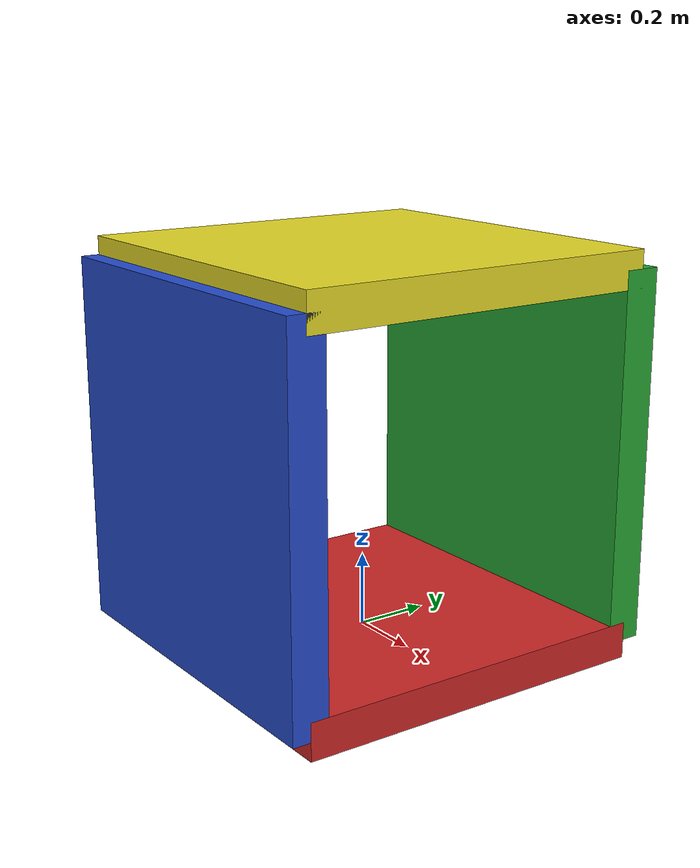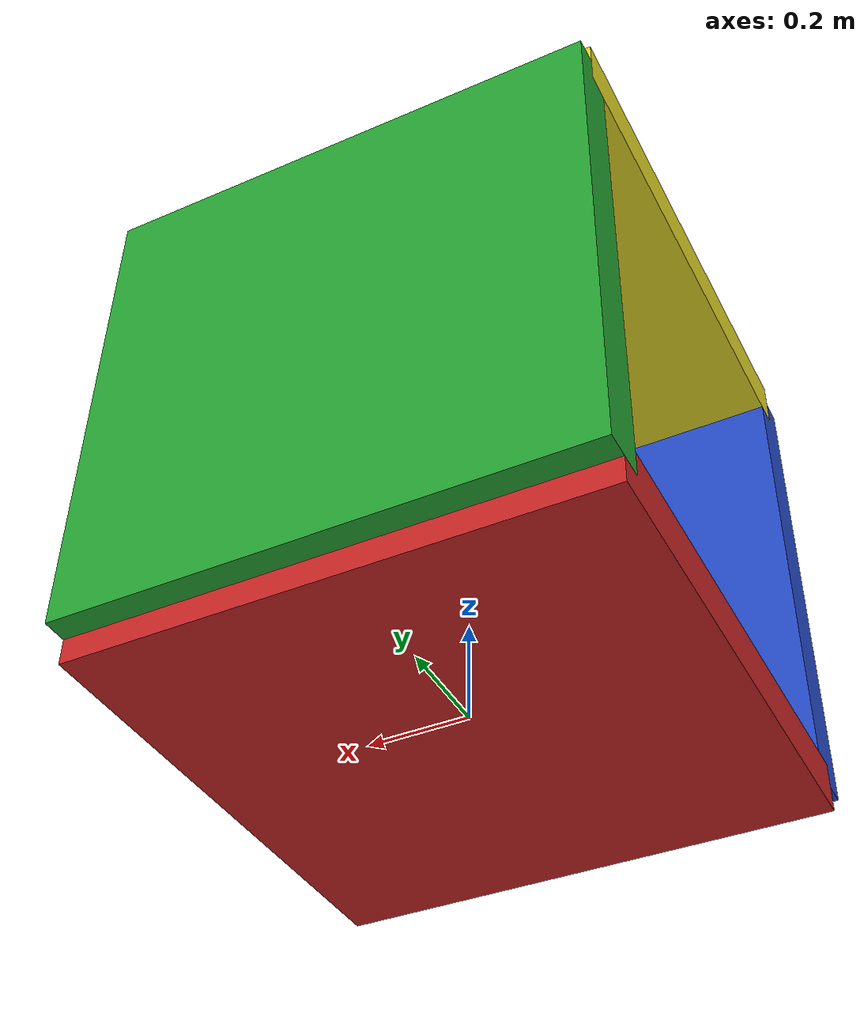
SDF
<sdf version="1.4">
  <model name="closed_chain">

    <link name="bottom_pad">
      <self_collide>1</self_collide>
      <pose>0 0 0 0 0 0</pose>
      <visual name="bottom_pad_visual">
        <geometry>
        <box>
          <size>1.0 1.0 0.1</size>
        </box>
        </geometry>
        <material>
          <script>
            <uri>file://media/materials/scripts/gazebo.material</uri>
            <name>Gazebo/Red</name>
          </script>
        </material>
      </visual>
      <collision name="bottom_pad_collision">
        <geometry>
          <box>
            <size>1.0 1.0 0.1</size>
          </box>
        </geometry>
      </collision>
    </link>

    <joint name="bottom_left_pad_joint" type="revolute">
      <pose>0 0.5 0 0 0 0</pose>
      <parent>bottom_pad</parent>
      <child>left_pad</child>
      <axis>
        <xyz>1 0 0</xyz>
      </axis>
    </joint>

    <link name="left_pad">
      <self_collide>1</self_collide>
      <pose>0. 0.5 0.5 -1.5707963268 0. 0.</pose>
      <visual name="left_pad_visual">
        <geometry>
          <box>
            <size>1.0 1.0 0.1</size>
          </box>
        </geometry>
        <material>
          <script>
            <uri>file://media/materials/scripts/gazebo.material</uri>
            <name>Gazebo/Green</name>
          </script>
        </material>
      </visual>
      <collision name="left_pad_collision">
        <geometry>
          <box>
            <size>1.0 1.0 0.1</size>
          </box>
        </geometry>
      </collision>
    </link>

    <joint name="bottom_right_pad_joint" type="revolute">
      <pose>0 -0.5 0 0 0 0</pose>
      <parent>bottom_pad</parent>
      <child>right_pad</child>
      <axis>
        <xyz>1 0 0</xyz>
      </axis>
    </joint>

    <link name="right_pad">
      <self_collide>1</self_collide>
      <pose>0. -0.5 0.5 1.5707963268 0. 0.</pose>
      <visual name="right_pad_visual">
        <geometry>
          <box>
            <size>1.0 1.0 0.1</size>
          </box>
        </geometry>
        <material>
          <script>
            <uri>file://media/materials/scripts/gazebo.material</uri>
            <name>Gazebo/Blue</name>
          </script>
        </material>
      </visual>
      <collision name="right_pad_collision">
        <geometry>
          <box>
            <size>1.0 1.0 0.1</size>
          </box>
        </geometry>
      </collision>
    </link>

    <joint name="top_left_pad_joint" type="revolute">
      <pose>0 -0.5 0 0 0 0</pose>
      <parent>top_pad</parent>
      <child>left_pad</child>
      <axis>
        <xyz>1 0 0</xyz>
      </axis>
    </joint>

    <link name="top_pad">
      <self_collide>1</self_collide>
      <pose>0. 0. 1.0 3.141592 0 0</pose>
      <visual name="top_pad_visual">
        <geometry>
          <box>
            <size>1.0 1.0 0.1</size>
          </box>
        </geometry>
        <material>
          <script>
            <uri>file://media/materials/scripts/gazebo.material</uri>
            <name>Gazebo/Yellow</name>
          </script>
        </material>
      </visual>
      <collision name="top_pad_collision">
        <geometry>
          <box>
            <size>1.0 1.0 0.1</size>
          </box>
        </geometry>
      </collision>
    </link>

    <joint name="top_right_pad_joint" type="revolute">
      <pose>0 0.5 0 0 0 0</pose>
      <parent>top_pad</parent>
      <child>right_pad</child>
      <axis>
        <xyz>1 0 0</xyz>
      </axis>
    </joint>

    <static>0</static>
  </model>
</sdf>
